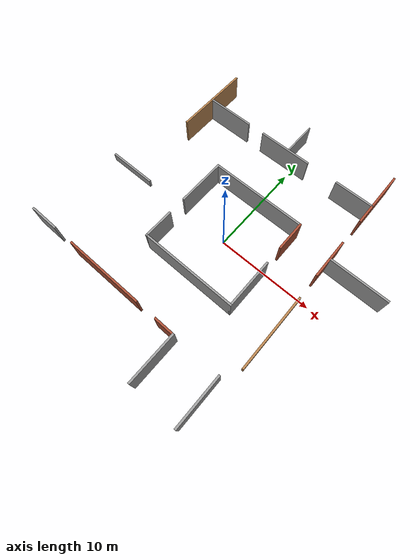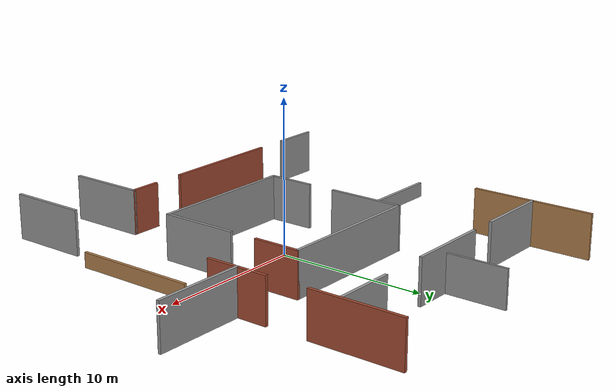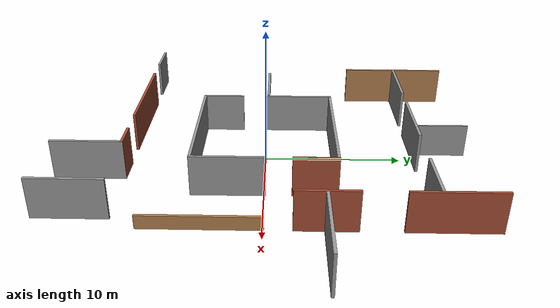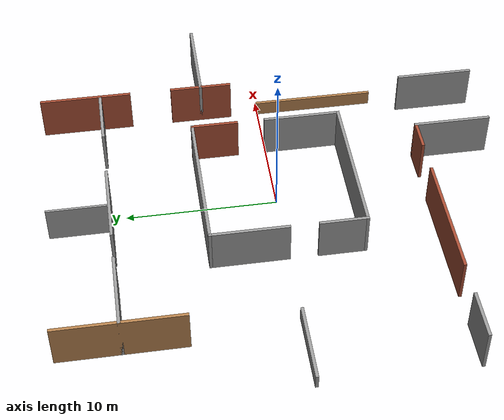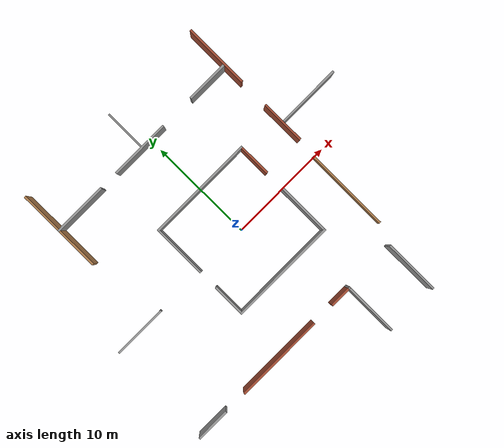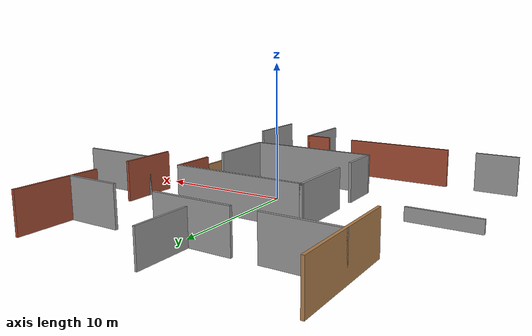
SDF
<?xml version='1.0'?>
<sdf version='1.7'>
  <model name='Office30'>
    <link name='Wall_46'>
      <pose>0 5 0 0 -0 0</pose>
      <self_collide>0</self_collide>
      <enable_wind>0</enable_wind>
      <kinematic>0</kinematic>
      <visual name='Wall_46_Visual'>
        <pose>0 0 1.5 0 -0 0</pose>
        <geometry>
          <box>
            <size>10.2 0.2 3</size>
          </box>
        </geometry>
        <material>
          <script>
            <uri>file://media/materials/scripts/gazebo.material</uri>
            <name>Gazebo/Grey</name>
          </script>
          <ambient>1 1 1 1</ambient>
          <shader type='pixel'/>
        </material>
        <meta>
          <layer>0</layer>
        </meta>
        <transparency>0</transparency>
        <cast_shadows>1</cast_shadows>
      </visual>
      <collision name='Wall_46_Collision'>
        <laser_retro>0</laser_retro>
        <max_contacts>10</max_contacts>
        <pose>0 0 1.5 0 -0 0</pose>
        <geometry>
          <box>
            <size>10.2 0.2 3</size>
          </box>
        </geometry>
        <surface>
          <friction>
            <ode>
              <mu>1</mu>
              <mu2>1</mu2>
              <fdir1>0 0 0</fdir1>
              <slip1>0</slip1>
              <slip2>0</slip2>
            </ode>
            <torsional>
              <coefficient>1</coefficient>
              <patch_radius>0</patch_radius>
              <surface_radius>0</surface_radius>
              <use_patch_radius>1</use_patch_radius>
              <ode>
                <slip>0</slip>
              </ode>
            </torsional>
          </friction>
          <bounce>
            <restitution_coefficient>0</restitution_coefficient>
            <threshold>1e+06</threshold>
          </bounce>
          <contact>
            <collide_without_contact>0</collide_without_contact>
            <collide_without_contact_bitmask>1</collide_without_contact_bitmask>
            <collide_bitmask>1</collide_bitmask>
            <ode>
              <soft_cfm>0</soft_cfm>
              <soft_erp>0.2</soft_erp>
              <kp>1e+13</kp>
              <kd>1</kd>
              <max_vel>0.01</max_vel>
              <min_depth>0</min_depth>
            </ode>
            <bullet>
              <split_impulse>1</split_impulse>
              <split_impulse_penetration_threshold>-0.01</split_impulse_penetration_threshold>
              <soft_cfm>0</soft_cfm>
              <soft_erp>0.2</soft_erp>
              <kp>1e+13</kp>
              <kd>1</kd>
            </bullet>
          </contact>
        </surface>
      </collision>
    </link>
    <link name='Wall_48'>
      <pose>0 -5 0 0 -0 0</pose>
      <self_collide>0</self_collide>
      <enable_wind>0</enable_wind>
      <kinematic>0</kinematic>
      <visual name='Wall_48_Visual'>
        <pose>0 0 1.5 0 -0 0</pose>
        <geometry>
          <box>
            <size>10.2 0.2 3</size>
          </box>
        </geometry>
        <material>
          <script>
            <uri>file://media/materials/scripts/gazebo.material</uri>
            <name>Gazebo/Grey</name>
          </script>
          <ambient>1 1 1 1</ambient>
          <shader type='pixel'/>
        </material>
        <meta>
          <layer>0</layer>
        </meta>
        <transparency>0</transparency>
        <cast_shadows>1</cast_shadows>
      </visual>
      <collision name='Wall_48_Collision'>
        <laser_retro>0</laser_retro>
        <max_contacts>10</max_contacts>
        <pose>0 0 1.5 0 -0 0</pose>
        <geometry>
          <box>
            <size>10.2 0.2 3</size>
          </box>
        </geometry>
        <surface>
          <friction>
            <ode>
              <mu>1</mu>
              <mu2>1</mu2>
              <fdir1>0 0 0</fdir1>
              <slip1>0</slip1>
              <slip2>0</slip2>
            </ode>
            <torsional>
              <coefficient>1</coefficient>
              <patch_radius>0</patch_radius>
              <surface_radius>0</surface_radius>
              <use_patch_radius>1</use_patch_radius>
              <ode>
                <slip>0</slip>
              </ode>
            </torsional>
          </friction>
          <bounce>
            <restitution_coefficient>0</restitution_coefficient>
            <threshold>1e+06</threshold>
          </bounce>
          <contact>
            <collide_without_contact>0</collide_without_contact>
            <collide_without_contact_bitmask>1</collide_without_contact_bitmask>
            <collide_bitmask>1</collide_bitmask>
            <ode>
              <soft_cfm>0</soft_cfm>
              <soft_erp>0.2</soft_erp>
              <kp>1e+13</kp>
              <kd>1</kd>
              <max_vel>0.01</max_vel>
              <min_depth>0</min_depth>
            </ode>
            <bullet>
              <split_impulse>1</split_impulse>
              <split_impulse_penetration_threshold>-0.01</split_impulse_penetration_threshold>
              <soft_cfm>0</soft_cfm>
              <soft_erp>0.2</soft_erp>
              <kp>1e+13</kp>
              <kd>1</kd>
            </bullet>
          </contact>
        </surface>
      </collision>
    </link>
    <link name='Wall_50'>
      <pose>5 -2.5 0 0 -0 1.5708</pose>
      <self_collide>0</self_collide>
      <enable_wind>0</enable_wind>
      <kinematic>0</kinematic>
      <visual name='Wall_50_Visual'>
        <pose>0 0 1.5 0 -0 0</pose>
        <geometry>
          <box>
            <size>5.2 0.2 3</size>
          </box>
        </geometry>
        <material>
          <script>
            <uri>file://media/materials/scripts/gazebo.material</uri>
            <name>Gazebo/Grey</name>
          </script>
          <ambient>1 1 1 1</ambient>
          <shader type='pixel'/>
        </material>
        <meta>
          <layer>0</layer>
        </meta>
        <transparency>0</transparency>
        <cast_shadows>1</cast_shadows>
      </visual>
      <collision name='Wall_50_Collision'>
        <laser_retro>0</laser_retro>
        <max_contacts>10</max_contacts>
        <pose>0 0 1.5 0 -0 0</pose>
        <geometry>
          <box>
            <size>5.2 0.2 3</size>
          </box>
        </geometry>
        <surface>
          <friction>
            <ode>
              <mu>1</mu>
              <mu2>1</mu2>
              <fdir1>0 0 0</fdir1>
              <slip1>0</slip1>
              <slip2>0</slip2>
            </ode>
            <torsional>
              <coefficient>1</coefficient>
              <patch_radius>0</patch_radius>
              <surface_radius>0</surface_radius>
              <use_patch_radius>1</use_patch_radius>
              <ode>
                <slip>0</slip>
              </ode>
            </torsional>
          </friction>
          <bounce>
            <restitution_coefficient>0</restitution_coefficient>
            <threshold>1e+06</threshold>
          </bounce>
          <contact>
            <collide_without_contact>0</collide_without_contact>
            <collide_without_contact_bitmask>1</collide_without_contact_bitmask>
            <collide_bitmask>1</collide_bitmask>
            <ode>
              <soft_cfm>0</soft_cfm>
              <soft_erp>0.2</soft_erp>
              <kp>1e+13</kp>
              <kd>1</kd>
              <max_vel>0.01</max_vel>
              <min_depth>0</min_depth>
            </ode>
            <bullet>
              <split_impulse>1</split_impulse>
              <split_impulse_penetration_threshold>-0.01</split_impulse_penetration_threshold>
              <soft_cfm>0</soft_cfm>
              <soft_erp>0.2</soft_erp>
              <kp>1e+13</kp>
              <kd>1</kd>
            </bullet>
          </contact>
        </surface>
      </collision>
    </link>
    <link name='Wall_52'>
      <pose>5 3.5 0 0 0 -1.5708</pose>
      <self_collide>0</self_collide>
      <enable_wind>0</enable_wind>
      <kinematic>0</kinematic>
      <visual name='Wall_52_Visual'>
        <pose>0 0 1.5 0 -0 0</pose>
        <geometry>
          <box>
            <size>3.2 0.2 3</size>
          </box>
        </geometry>
        <material>
          <script>
            <uri>file://media/materials/scripts/gazebo.material</uri>
            <name>Gazebo/Bricks</name>
          </script>
          <ambient>1 1 1 1</ambient>
          <shader type='pixel'/>
        </material>
        <meta>
          <layer>0</layer>
        </meta>
        <transparency>0</transparency>
        <cast_shadows>1</cast_shadows>
      </visual>
      <collision name='Wall_52_Collision'>
        <laser_retro>0</laser_retro>
        <max_contacts>10</max_contacts>
        <pose>0 0 1.5 0 -0 0</pose>
        <geometry>
          <box>
            <size>3.2 0.2 3</size>
          </box>
        </geometry>
        <surface>
          <friction>
            <ode>
              <mu>1</mu>
              <mu2>1</mu2>
              <fdir1>0 0 0</fdir1>
              <slip1>0</slip1>
              <slip2>0</slip2>
            </ode>
            <torsional>
              <coefficient>1</coefficient>
              <patch_radius>0</patch_radius>
              <surface_radius>0</surface_radius>
              <use_patch_radius>1</use_patch_radius>
              <ode>
                <slip>0</slip>
              </ode>
            </torsional>
          </friction>
          <bounce>
            <restitution_coefficient>0</restitution_coefficient>
            <threshold>1e+06</threshold>
          </bounce>
          <contact>
            <collide_without_contact>0</collide_without_contact>
            <collide_without_contact_bitmask>1</collide_without_contact_bitmask>
            <collide_bitmask>1</collide_bitmask>
            <ode>
              <soft_cfm>0</soft_cfm>
              <soft_erp>0.2</soft_erp>
              <kp>1e+13</kp>
              <kd>1</kd>
              <max_vel>0.01</max_vel>
              <min_depth>0</min_depth>
            </ode>
            <bullet>
              <split_impulse>1</split_impulse>
              <split_impulse_penetration_threshold>-0.01</split_impulse_penetration_threshold>
              <soft_cfm>0</soft_cfm>
              <soft_erp>0.2</soft_erp>
              <kp>1e+13</kp>
              <kd>1</kd>
            </bullet>
          </contact>
        </surface>
      </collision>
    </link>
    <link name='Wall_54'>
      <pose>9 -4 0 0 -0 1.5708</pose>
      <self_collide>0</self_collide>
      <enable_wind>0</enable_wind>
      <kinematic>0</kinematic>
      <visual name='Wall_54_Visual'>
        <pose>0 0 0.5 0 -0 0</pose>
        <geometry>
          <box>
            <size>8.2 0.2 1</size>
          </box>
        </geometry>
        <material>
          <script>
            <uri>file://media/materials/scripts/gazebo.material</uri>
            <name>Gazebo/Wood</name>
          </script>
          <ambient>1 1 1 1</ambient>
          <shader type='pixel'/>
        </material>
        <meta>
          <layer>0</layer>
        </meta>
        <transparency>0</transparency>
        <cast_shadows>1</cast_shadows>
      </visual>
      <collision name='Wall_54_Collision'>
        <laser_retro>0</laser_retro>
        <max_contacts>10</max_contacts>
        <pose>0 0 0.5 0 -0 0</pose>
        <geometry>
          <box>
            <size>8.2 0.2 1</size>
          </box>
        </geometry>
        <surface>
          <friction>
            <ode>
              <mu>1</mu>
              <mu2>1</mu2>
              <fdir1>0 0 0</fdir1>
              <slip1>0</slip1>
              <slip2>0</slip2>
            </ode>
            <torsional>
              <coefficient>1</coefficient>
              <patch_radius>0</patch_radius>
              <surface_radius>0</surface_radius>
              <use_patch_radius>1</use_patch_radius>
              <ode>
                <slip>0</slip>
              </ode>
            </torsional>
          </friction>
          <bounce>
            <restitution_coefficient>0</restitution_coefficient>
            <threshold>1e+06</threshold>
          </bounce>
          <contact>
            <collide_without_contact>0</collide_without_contact>
            <collide_without_contact_bitmask>1</collide_without_contact_bitmask>
            <collide_bitmask>1</collide_bitmask>
            <ode>
              <soft_cfm>0</soft_cfm>
              <soft_erp>0.2</soft_erp>
              <kp>1e+13</kp>
              <kd>1</kd>
              <max_vel>0.01</max_vel>
              <min_depth>0</min_depth>
            </ode>
            <bullet>
              <split_impulse>1</split_impulse>
              <split_impulse_penetration_threshold>-0.01</split_impulse_penetration_threshold>
              <soft_cfm>0</soft_cfm>
              <soft_erp>0.2</soft_erp>
              <kp>1e+13</kp>
              <kd>1</kd>
            </bullet>
          </contact>
        </surface>
      </collision>
    </link>
    <link name='Wall_59'>
      <pose>-5 2.5 0 0 0 -1.5708</pose>
      <self_collide>0</self_collide>
      <enable_wind>0</enable_wind>
      <kinematic>0</kinematic>
      <visual name='Wall_59_Visual'>
        <pose>0 0 1.5 0 -0 0</pose>
        <geometry>
          <box>
            <size>5.2 0.2 3</size>
          </box>
        </geometry>
        <material>
          <script>
            <uri>file://media/materials/scripts/gazebo.material</uri>
            <name>Gazebo/Grey</name>
          </script>
          <ambient>1 1 1 1</ambient>
          <shader type='pixel'/>
        </material>
        <meta>
          <layer>0</layer>
        </meta>
        <transparency>0</transparency>
        <cast_shadows>1</cast_shadows>
      </visual>
      <collision name='Wall_59_Collision'>
        <laser_retro>0</laser_retro>
        <max_contacts>10</max_contacts>
        <pose>0 0 1.5 0 -0 0</pose>
        <geometry>
          <box>
            <size>5.2 0.2 3</size>
          </box>
        </geometry>
        <surface>
          <friction>
            <ode>
              <mu>1</mu>
              <mu2>1</mu2>
              <fdir1>0 0 0</fdir1>
              <slip1>0</slip1>
              <slip2>0</slip2>
            </ode>
            <torsional>
              <coefficient>1</coefficient>
              <patch_radius>0</patch_radius>
              <surface_radius>0</surface_radius>
              <use_patch_radius>1</use_patch_radius>
              <ode>
                <slip>0</slip>
              </ode>
            </torsional>
          </friction>
          <bounce>
            <restitution_coefficient>0</restitution_coefficient>
            <threshold>1e+06</threshold>
          </bounce>
          <contact>
            <collide_without_contact>0</collide_without_contact>
            <collide_without_contact_bitmask>1</collide_without_contact_bitmask>
            <collide_bitmask>1</collide_bitmask>
            <ode>
              <soft_cfm>0</soft_cfm>
              <soft_erp>0.2</soft_erp>
              <kp>1e+13</kp>
              <kd>1</kd>
              <max_vel>0.01</max_vel>
              <min_depth>0</min_depth>
            </ode>
            <bullet>
              <split_impulse>1</split_impulse>
              <split_impulse_penetration_threshold>-0.01</split_impulse_penetration_threshold>
              <soft_cfm>0</soft_cfm>
              <soft_erp>0.2</soft_erp>
              <kp>1e+13</kp>
              <kd>1</kd>
            </bullet>
          </contact>
        </surface>
      </collision>
    </link>
    <link name='Wall_61'>
      <pose>-5 -3.5 0 0 -0 1.5708</pose>
      <self_collide>0</self_collide>
      <enable_wind>0</enable_wind>
      <kinematic>0</kinematic>
      <visual name='Wall_61_Visual'>
        <pose>0 0 1.5 0 -0 0</pose>
        <geometry>
          <box>
            <size>3.2 0.2 3</size>
          </box>
        </geometry>
        <material>
          <script>
            <uri>file://media/materials/scripts/gazebo.material</uri>
            <name>Gazebo/Grey</name>
          </script>
          <ambient>1 1 1 1</ambient>
          <shader type='pixel'/>
        </material>
        <meta>
          <layer>0</layer>
        </meta>
        <transparency>0</transparency>
        <cast_shadows>1</cast_shadows>
      </visual>
      <collision name='Wall_61_Collision'>
        <laser_retro>0</laser_retro>
        <max_contacts>10</max_contacts>
        <pose>0 0 1.5 0 -0 0</pose>
        <geometry>
          <box>
            <size>3.2 0.2 3</size>
          </box>
        </geometry>
        <surface>
          <friction>
            <ode>
              <mu>1</mu>
              <mu2>1</mu2>
              <fdir1>0 0 0</fdir1>
              <slip1>0</slip1>
              <slip2>0</slip2>
            </ode>
            <torsional>
              <coefficient>1</coefficient>
              <patch_radius>0</patch_radius>
              <surface_radius>0</surface_radius>
              <use_patch_radius>1</use_patch_radius>
              <ode>
                <slip>0</slip>
              </ode>
            </torsional>
          </friction>
          <bounce>
            <restitution_coefficient>0</restitution_coefficient>
            <threshold>1e+06</threshold>
          </bounce>
          <contact>
            <collide_without_contact>0</collide_without_contact>
            <collide_without_contact_bitmask>1</collide_without_contact_bitmask>
            <collide_bitmask>1</collide_bitmask>
            <ode>
              <soft_cfm>0</soft_cfm>
              <soft_erp>0.2</soft_erp>
              <kp>1e+13</kp>
              <kd>1</kd>
              <max_vel>0.01</max_vel>
              <min_depth>0</min_depth>
            </ode>
            <bullet>
              <split_impulse>1</split_impulse>
              <split_impulse_penetration_threshold>-0.01</split_impulse_penetration_threshold>
              <soft_cfm>0</soft_cfm>
              <soft_erp>0.2</soft_erp>
              <kp>1e+13</kp>
              <kd>1</kd>
            </bullet>
          </contact>
        </surface>
      </collision>
    </link>
    <link name='Wall_63'>
      <pose>9 4 0 0 -0 1.5708</pose>
      <self_collide>0</self_collide>
      <enable_wind>0</enable_wind>
      <kinematic>0</kinematic>
      <visual name='Wall_63_Visual'>
        <pose>0 0 1.5 0 -0 0</pose>
        <geometry>
          <box>
            <size>4.2 0.2 3</size>
          </box>
        </geometry>
        <material>
          <script>
            <uri>file://media/materials/scripts/gazebo.material</uri>
            <name>Gazebo/Bricks</name>
          </script>
          <ambient>1 1 1 1</ambient>
          <shader type='pixel'/>
        </material>
        <meta>
          <layer>0</layer>
        </meta>
        <transparency>0</transparency>
        <cast_shadows>1</cast_shadows>
      </visual>
      <collision name='Wall_63_Collision'>
        <laser_retro>0</laser_retro>
        <max_contacts>10</max_contacts>
        <pose>0 0 1.5 0 -0 0</pose>
        <geometry>
          <box>
            <size>4.2 0.2 3</size>
          </box>
        </geometry>
        <surface>
          <friction>
            <ode>
              <mu>1</mu>
              <mu2>1</mu2>
              <fdir1>0 0 0</fdir1>
              <slip1>0</slip1>
              <slip2>0</slip2>
            </ode>
            <torsional>
              <coefficient>1</coefficient>
              <patch_radius>0</patch_radius>
              <surface_radius>0</surface_radius>
              <use_patch_radius>1</use_patch_radius>
              <ode>
                <slip>0</slip>
              </ode>
            </torsional>
          </friction>
          <bounce>
            <restitution_coefficient>0</restitution_coefficient>
            <threshold>1e+06</threshold>
          </bounce>
          <contact>
            <collide_without_contact>0</collide_without_contact>
            <collide_without_contact_bitmask>1</collide_without_contact_bitmask>
            <collide_bitmask>1</collide_bitmask>
            <ode>
              <soft_cfm>0</soft_cfm>
              <soft_erp>0.2</soft_erp>
              <kp>1e+13</kp>
              <kd>1</kd>
              <max_vel>0.01</max_vel>
              <min_depth>0</min_depth>
            </ode>
            <bullet>
              <split_impulse>1</split_impulse>
              <split_impulse_penetration_threshold>-0.01</split_impulse_penetration_threshold>
              <soft_cfm>0</soft_cfm>
              <soft_erp>0.2</soft_erp>
              <kp>1e+13</kp>
              <kd>1</kd>
            </bullet>
          </contact>
        </surface>
      </collision>
    </link>
    <link name='Wall_65'>
      <pose>9 12 0 0 -0 1.5708</pose>
      <self_collide>0</self_collide>
      <enable_wind>0</enable_wind>
      <kinematic>0</kinematic>
      <visual name='Wall_65_Visual'>
        <pose>0 0 1.5 0 -0 0</pose>
        <geometry>
          <box>
            <size>6.2 0.2 3</size>
          </box>
        </geometry>
        <material>
          <script>
            <uri>file://media/materials/scripts/gazebo.material</uri>
            <name>Gazebo/Bricks</name>
          </script>
          <ambient>1 1 1 1</ambient>
          <shader type='pixel'/>
        </material>
        <meta>
          <layer>0</layer>
        </meta>
        <transparency>0</transparency>
        <cast_shadows>1</cast_shadows>
      </visual>
      <collision name='Wall_65_Collision'>
        <laser_retro>0</laser_retro>
        <max_contacts>10</max_contacts>
        <pose>0 0 1.5 0 -0 0</pose>
        <geometry>
          <box>
            <size>6.2 0.2 3</size>
          </box>
        </geometry>
        <surface>
          <friction>
            <ode>
              <mu>1</mu>
              <mu2>1</mu2>
              <fdir1>0 0 0</fdir1>
              <slip1>0</slip1>
              <slip2>0</slip2>
            </ode>
            <torsional>
              <coefficient>1</coefficient>
              <patch_radius>0</patch_radius>
              <surface_radius>0</surface_radius>
              <use_patch_radius>1</use_patch_radius>
              <ode>
                <slip>0</slip>
              </ode>
            </torsional>
          </friction>
          <bounce>
            <restitution_coefficient>0</restitution_coefficient>
            <threshold>1e+06</threshold>
          </bounce>
          <contact>
            <collide_without_contact>0</collide_without_contact>
            <collide_without_contact_bitmask>1</collide_without_contact_bitmask>
            <collide_bitmask>1</collide_bitmask>
            <ode>
              <soft_cfm>0</soft_cfm>
              <soft_erp>0.2</soft_erp>
              <kp>1e+13</kp>
              <kd>1</kd>
              <max_vel>0.01</max_vel>
              <min_depth>0</min_depth>
            </ode>
            <bullet>
              <split_impulse>1</split_impulse>
              <split_impulse_penetration_threshold>-0.01</split_impulse_penetration_threshold>
              <soft_cfm>0</soft_cfm>
              <soft_erp>0.2</soft_erp>
              <kp>1e+13</kp>
              <kd>1</kd>
            </bullet>
          </contact>
        </surface>
      </collision>
    </link>
    <link name='Wall_67'>
      <pose>-13.5 -10 0 0 -0 0</pose>
      <self_collide>0</self_collide>
      <enable_wind>0</enable_wind>
      <kinematic>0</kinematic>
      <visual name='Wall_67_Visual'>
        <pose>0 0 1.5 0 -0 0</pose>
        <geometry>
          <box>
            <size>3.2 0.2 3</size>
          </box>
        </geometry>
        <material>
          <script>
            <uri>file://media/materials/scripts/gazebo.material</uri>
            <name>Gazebo/Grey</name>
          </script>
          <ambient>1 1 1 1</ambient>
          <shader type='pixel'/>
        </material>
        <meta>
          <layer>0</layer>
        </meta>
        <transparency>0</transparency>
        <cast_shadows>1</cast_shadows>
      </visual>
      <collision name='Wall_67_Collision'>
        <laser_retro>0</laser_retro>
        <max_contacts>10</max_contacts>
        <pose>0 0 1.5 0 -0 0</pose>
        <geometry>
          <box>
            <size>3.2 0.2 3</size>
          </box>
        </geometry>
        <surface>
          <friction>
            <ode>
              <mu>1</mu>
              <mu2>1</mu2>
              <fdir1>0 0 0</fdir1>
              <slip1>0</slip1>
              <slip2>0</slip2>
            </ode>
            <torsional>
              <coefficient>1</coefficient>
              <patch_radius>0</patch_radius>
              <surface_radius>0</surface_radius>
              <use_patch_radius>1</use_patch_radius>
              <ode>
                <slip>0</slip>
              </ode>
            </torsional>
          </friction>
          <bounce>
            <restitution_coefficient>0</restitution_coefficient>
            <threshold>1e+06</threshold>
          </bounce>
          <contact>
            <collide_without_contact>0</collide_without_contact>
            <collide_without_contact_bitmask>1</collide_without_contact_bitmask>
            <collide_bitmask>1</collide_bitmask>
            <ode>
              <soft_cfm>0</soft_cfm>
              <soft_erp>0.2</soft_erp>
              <kp>1e+13</kp>
              <kd>1</kd>
              <max_vel>0.01</max_vel>
              <min_depth>0</min_depth>
            </ode>
            <bullet>
              <split_impulse>1</split_impulse>
              <split_impulse_penetration_threshold>-0.01</split_impulse_penetration_threshold>
              <soft_cfm>0</soft_cfm>
              <soft_erp>0.2</soft_erp>
              <kp>1e+13</kp>
              <kd>1</kd>
            </bullet>
          </contact>
        </surface>
      </collision>
    </link>
    <link name='Wall_69'>
      <pose>-5.47371 -10 0 0 -0 0</pose>
      <self_collide>0</self_collide>
      <enable_wind>0</enable_wind>
      <kinematic>0</kinematic>
      <inertial>
        <inertia>
          <ixx>0</ixx>
          <ixy>0</ixy>
          <ixz>0</ixz>
          <iyy>0</iyy>
          <iyz>0</iyz>
          <izz>0</izz>
        </inertia>
        <mass>0</mass>
        <pose>0 0 0 0 -0 0</pose>
      </inertial>
      <visual name='Wall_69_Visual'>
        <pose>0 0 1.5 0 -0 0</pose>
        <geometry>
          <box>
            <size>8.48445 0.2 3</size>
          </box>
        </geometry>
        <material>
          <script>
            <uri>file://media/materials/scripts/gazebo.material</uri>
            <name>Gazebo/Bricks</name>
          </script>
          <ambient>1 1 1 1</ambient>
          <shader type='pixel'/>
        </material>
        <meta>
          <layer>0</layer>
        </meta>
        <transparency>0</transparency>
        <cast_shadows>1</cast_shadows>
      </visual>
      <collision name='Wall_69_Collision'>
        <laser_retro>0</laser_retro>
        <max_contacts>10</max_contacts>
        <pose>0 0 1.5 0 -0 0</pose>
        <geometry>
          <box>
            <size>8.48445 0.2 3</size>
          </box>
        </geometry>
        <surface>
          <friction>
            <ode>
              <mu>1</mu>
              <mu2>1</mu2>
              <fdir1>0 0 0</fdir1>
              <slip1>0</slip1>
              <slip2>0</slip2>
            </ode>
            <torsional>
              <coefficient>1</coefficient>
              <patch_radius>0</patch_radius>
              <surface_radius>0</surface_radius>
              <use_patch_radius>1</use_patch_radius>
              <ode>
                <slip>0</slip>
              </ode>
            </torsional>
          </friction>
          <bounce>
            <restitution_coefficient>0</restitution_coefficient>
            <threshold>1e+06</threshold>
          </bounce>
          <contact>
            <collide_without_contact>0</collide_without_contact>
            <collide_without_contact_bitmask>1</collide_without_contact_bitmask>
            <collide_bitmask>1</collide_bitmask>
            <ode>
              <soft_cfm>0</soft_cfm>
              <soft_erp>0.2</soft_erp>
              <kp>1e+13</kp>
              <kd>1</kd>
              <max_vel>0.01</max_vel>
              <min_depth>0</min_depth>
            </ode>
            <bullet>
              <split_impulse>1</split_impulse>
              <split_impulse_penetration_threshold>-0.01</split_impulse_penetration_threshold>
              <soft_cfm>0</soft_cfm>
              <soft_erp>0.2</soft_erp>
              <kp>1e+13</kp>
              <kd>1</kd>
            </bullet>
          </contact>
        </surface>
      </collision>
    </link>
    <link name='Wall_71'>
      <pose>2 -10 0 0 -0 0</pose>
      <self_collide>0</self_collide>
      <enable_wind>0</enable_wind>
      <kinematic>0</kinematic>
      <visual name='Wall_71_Visual'>
        <pose>0 0 1.5 0 -0 0</pose>
        <geometry>
          <box>
            <size>2.2 0.2 3</size>
          </box>
        </geometry>
        <material>
          <script>
            <uri>file://media/materials/scripts/gazebo.material</uri>
            <name>Gazebo/Bricks</name>
          </script>
          <ambient>1 1 1 1</ambient>
          <shader type='pixel'/>
        </material>
        <meta>
          <layer>0</layer>
        </meta>
        <transparency>0</transparency>
        <cast_shadows>1</cast_shadows>
      </visual>
      <collision name='Wall_71_Collision'>
        <laser_retro>0</laser_retro>
        <max_contacts>10</max_contacts>
        <pose>0 0 1.5 0 -0 0</pose>
        <geometry>
          <box>
            <size>2.2 0.2 3</size>
          </box>
        </geometry>
        <surface>
          <friction>
            <ode>
              <mu>1</mu>
              <mu2>1</mu2>
              <fdir1>0 0 0</fdir1>
              <slip1>0</slip1>
              <slip2>0</slip2>
            </ode>
            <torsional>
              <coefficient>1</coefficient>
              <patch_radius>0</patch_radius>
              <surface_radius>0</surface_radius>
              <use_patch_radius>1</use_patch_radius>
              <ode>
                <slip>0</slip>
              </ode>
            </torsional>
          </friction>
          <bounce>
            <restitution_coefficient>0</restitution_coefficient>
            <threshold>1e+06</threshold>
          </bounce>
          <contact>
            <collide_without_contact>0</collide_without_contact>
            <collide_without_contact_bitmask>1</collide_without_contact_bitmask>
            <collide_bitmask>1</collide_bitmask>
            <ode>
              <soft_cfm>0</soft_cfm>
              <soft_erp>0.2</soft_erp>
              <kp>1e+13</kp>
              <kd>1</kd>
              <max_vel>0.01</max_vel>
              <min_depth>0</min_depth>
            </ode>
            <bullet>
              <split_impulse>1</split_impulse>
              <split_impulse_penetration_threshold>-0.01</split_impulse_penetration_threshold>
              <soft_cfm>0</soft_cfm>
              <soft_erp>0.2</soft_erp>
              <kp>1e+13</kp>
              <kd>1</kd>
            </bullet>
          </contact>
        </surface>
      </collision>
    </link>
    <link name='Wall_72'>
      <pose>3 -12.5 0 0 0 -1.5708</pose>
      <self_collide>0</self_collide>
      <enable_wind>0</enable_wind>
      <kinematic>0</kinematic>
      <visual name='Wall_72_Visual'>
        <pose>0 0 1.5 0 -0 0</pose>
        <geometry>
          <box>
            <size>5.2 0.2 3</size>
          </box>
        </geometry>
        <material>
          <script>
            <uri>file://media/materials/scripts/gazebo.material</uri>
            <name>Gazebo/Grey</name>
          </script>
          <ambient>1 1 1 1</ambient>
          <shader type='pixel'/>
        </material>
        <meta>
          <layer>0</layer>
        </meta>
        <transparency>0</transparency>
        <cast_shadows>1</cast_shadows>
      </visual>
      <collision name='Wall_72_Collision'>
        <laser_retro>0</laser_retro>
        <max_contacts>10</max_contacts>
        <pose>0 0 1.5 0 -0 0</pose>
        <geometry>
          <box>
            <size>5.2 0.2 3</size>
          </box>
        </geometry>
        <surface>
          <friction>
            <ode>
              <mu>1</mu>
              <mu2>1</mu2>
              <fdir1>0 0 0</fdir1>
              <slip1>0</slip1>
              <slip2>0</slip2>
            </ode>
            <torsional>
              <coefficient>1</coefficient>
              <patch_radius>0</patch_radius>
              <surface_radius>0</surface_radius>
              <use_patch_radius>1</use_patch_radius>
              <ode>
                <slip>0</slip>
              </ode>
            </torsional>
          </friction>
          <bounce>
            <restitution_coefficient>0</restitution_coefficient>
            <threshold>1e+06</threshold>
          </bounce>
          <contact>
            <collide_without_contact>0</collide_without_contact>
            <collide_without_contact_bitmask>1</collide_without_contact_bitmask>
            <collide_bitmask>1</collide_bitmask>
            <ode>
              <soft_cfm>0</soft_cfm>
              <soft_erp>0.2</soft_erp>
              <kp>1e+13</kp>
              <kd>1</kd>
              <max_vel>0.01</max_vel>
              <min_depth>0</min_depth>
            </ode>
            <bullet>
              <split_impulse>1</split_impulse>
              <split_impulse_penetration_threshold>-0.01</split_impulse_penetration_threshold>
              <soft_cfm>0</soft_cfm>
              <soft_erp>0.2</soft_erp>
              <kp>1e+13</kp>
              <kd>1</kd>
            </bullet>
          </contact>
        </surface>
      </collision>
    </link>
    <link name='Wall_75'>
      <pose>8 -12.5 0 0 0 -1.5708</pose>
      <self_collide>0</self_collide>
      <enable_wind>0</enable_wind>
      <kinematic>0</kinematic>
      <visual name='Wall_75_Visual'>
        <pose>0 0 1.5 0 -0 0</pose>
        <geometry>
          <box>
            <size>5.2 0.2 3</size>
          </box>
        </geometry>
        <material>
          <script>
            <uri>file://media/materials/scripts/gazebo.material</uri>
            <name>Gazebo/Grey</name>
          </script>
          <ambient>1 1 1 1</ambient>
          <shader type='pixel'/>
        </material>
        <meta>
          <layer>0</layer>
        </meta>
        <transparency>0</transparency>
        <cast_shadows>1</cast_shadows>
      </visual>
      <collision name='Wall_75_Collision'>
        <laser_retro>0</laser_retro>
        <max_contacts>10</max_contacts>
        <pose>0 0 1.5 0 -0 0</pose>
        <geometry>
          <box>
            <size>5.2 0.2 3</size>
          </box>
        </geometry>
        <surface>
          <friction>
            <ode>
              <mu>1</mu>
              <mu2>1</mu2>
              <fdir1>0 0 0</fdir1>
              <slip1>0</slip1>
              <slip2>0</slip2>
            </ode>
            <torsional>
              <coefficient>1</coefficient>
              <patch_radius>0</patch_radius>
              <surface_radius>0</surface_radius>
              <use_patch_radius>1</use_patch_radius>
              <ode>
                <slip>0</slip>
              </ode>
            </torsional>
          </friction>
          <bounce>
            <restitution_coefficient>0</restitution_coefficient>
            <threshold>1e+06</threshold>
          </bounce>
          <contact>
            <collide_without_contact>0</collide_without_contact>
            <collide_without_contact_bitmask>1</collide_without_contact_bitmask>
            <collide_bitmask>1</collide_bitmask>
            <ode>
              <soft_cfm>0</soft_cfm>
              <soft_erp>0.2</soft_erp>
              <kp>1e+13</kp>
              <kd>1</kd>
              <max_vel>0.01</max_vel>
              <min_depth>0</min_depth>
            </ode>
            <bullet>
              <split_impulse>1</split_impulse>
              <split_impulse_penetration_threshold>-0.01</split_impulse_penetration_threshold>
              <soft_cfm>0</soft_cfm>
              <soft_erp>0.2</soft_erp>
              <kp>1e+13</kp>
              <kd>1</kd>
            </bullet>
          </contact>
        </surface>
      </collision>
    </link>
    <link name='Wall_77'>
      <pose>12 4 0 0 -0 0</pose>
      <self_collide>0</self_collide>
      <enable_wind>0</enable_wind>
      <kinematic>0</kinematic>
      <visual name='Wall_77_Visual'>
        <pose>0 0 1.5 0 -0 0</pose>
        <geometry>
          <box>
            <size>6.2 0.2 3</size>
          </box>
        </geometry>
        <material>
          <script>
            <uri>file://media/materials/scripts/gazebo.material</uri>
            <name>Gazebo/Grey</name>
          </script>
          <ambient>1 1 1 1</ambient>
          <shader type='pixel'/>
        </material>
        <meta>
          <layer>0</layer>
        </meta>
        <transparency>0</transparency>
        <cast_shadows>1</cast_shadows>
      </visual>
      <collision name='Wall_77_Collision'>
        <laser_retro>0</laser_retro>
        <max_contacts>10</max_contacts>
        <pose>0 0 1.5 0 -0 0</pose>
        <geometry>
          <box>
            <size>6.2 0.2 3</size>
          </box>
        </geometry>
        <surface>
          <friction>
            <ode>
              <mu>1</mu>
              <mu2>1</mu2>
              <fdir1>0 0 0</fdir1>
              <slip1>0</slip1>
              <slip2>0</slip2>
            </ode>
            <torsional>
              <coefficient>1</coefficient>
              <patch_radius>0</patch_radius>
              <surface_radius>0</surface_radius>
              <use_patch_radius>1</use_patch_radius>
              <ode>
                <slip>0</slip>
              </ode>
            </torsional>
          </friction>
          <bounce>
            <restitution_coefficient>0</restitution_coefficient>
            <threshold>1e+06</threshold>
          </bounce>
          <contact>
            <collide_without_contact>0</collide_without_contact>
            <collide_without_contact_bitmask>1</collide_without_contact_bitmask>
            <collide_bitmask>1</collide_bitmask>
            <ode>
              <soft_cfm>0</soft_cfm>
              <soft_erp>0.2</soft_erp>
              <kp>1e+13</kp>
              <kd>1</kd>
              <max_vel>0.01</max_vel>
              <min_depth>0</min_depth>
            </ode>
            <bullet>
              <split_impulse>1</split_impulse>
              <split_impulse_penetration_threshold>-0.01</split_impulse_penetration_threshold>
              <soft_cfm>0</soft_cfm>
              <soft_erp>0.2</soft_erp>
              <kp>1e+13</kp>
              <kd>1</kd>
            </bullet>
          </contact>
        </surface>
      </collision>
    </link>
    <link name='Wall_79'>
      <pose>7 11 0 0 -0 3.14159</pose>
      <self_collide>0</self_collide>
      <enable_wind>0</enable_wind>
      <kinematic>0</kinematic>
      <visual name='Wall_79_Visual'>
        <pose>0 0 1.5 0 -0 0</pose>
        <geometry>
          <box>
            <size>4.2 0.2 3</size>
          </box>
        </geometry>
        <material>
          <script>
            <uri>file://media/materials/scripts/gazebo.material</uri>
            <name>Gazebo/Grey</name>
          </script>
          <ambient>1 1 1 1</ambient>
          <shader type='pixel'/>
        </material>
        <meta>
          <layer>0</layer>
        </meta>
        <transparency>0</transparency>
        <cast_shadows>1</cast_shadows>
      </visual>
      <collision name='Wall_79_Collision'>
        <laser_retro>0</laser_retro>
        <max_contacts>10</max_contacts>
        <pose>0 0 1.5 0 -0 0</pose>
        <geometry>
          <box>
            <size>4.2 0.2 3</size>
          </box>
        </geometry>
        <surface>
          <friction>
            <ode>
              <mu>1</mu>
              <mu2>1</mu2>
              <fdir1>0 0 0</fdir1>
              <slip1>0</slip1>
              <slip2>0</slip2>
            </ode>
            <torsional>
              <coefficient>1</coefficient>
              <patch_radius>0</patch_radius>
              <surface_radius>0</surface_radius>
              <use_patch_radius>1</use_patch_radius>
              <ode>
                <slip>0</slip>
              </ode>
            </torsional>
          </friction>
          <bounce>
            <restitution_coefficient>0</restitution_coefficient>
            <threshold>1e+06</threshold>
          </bounce>
          <contact>
            <collide_without_contact>0</collide_without_contact>
            <collide_without_contact_bitmask>1</collide_without_contact_bitmask>
            <collide_bitmask>1</collide_bitmask>
            <ode>
              <soft_cfm>0</soft_cfm>
              <soft_erp>0.2</soft_erp>
              <kp>1e+13</kp>
              <kd>1</kd>
              <max_vel>0.01</max_vel>
              <min_depth>0</min_depth>
            </ode>
            <bullet>
              <split_impulse>1</split_impulse>
              <split_impulse_penetration_threshold>-0.01</split_impulse_penetration_threshold>
              <soft_cfm>0</soft_cfm>
              <soft_erp>0.2</soft_erp>
              <kp>1e+13</kp>
              <kd>1</kd>
            </bullet>
          </contact>
        </surface>
      </collision>
    </link>
    <link name='Wall_81'>
      <pose>-1.25 11 0 0 -0 3.14159</pose>
      <self_collide>0</self_collide>
      <enable_wind>0</enable_wind>
      <kinematic>0</kinematic>
      <visual name='Wall_81_Visual'>
        <pose>0 0 1.5 0 -0 0</pose>
        <geometry>
          <box>
            <size>5.7 0.2 3</size>
          </box>
        </geometry>
        <material>
          <script>
            <uri>file://media/materials/scripts/gazebo.material</uri>
            <name>Gazebo/Grey</name>
          </script>
          <ambient>1 1 1 1</ambient>
          <shader type='pixel'/>
        </material>
        <meta>
          <layer>0</layer>
        </meta>
        <transparency>0</transparency>
        <cast_shadows>1</cast_shadows>
      </visual>
      <collision name='Wall_81_Collision'>
        <laser_retro>0</laser_retro>
        <max_contacts>10</max_contacts>
        <pose>0 0 1.5 0 -0 0</pose>
        <geometry>
          <box>
            <size>5.7 0.2 3</size>
          </box>
        </geometry>
        <surface>
          <friction>
            <ode>
              <mu>1</mu>
              <mu2>1</mu2>
              <fdir1>0 0 0</fdir1>
              <slip1>0</slip1>
              <slip2>0</slip2>
            </ode>
            <torsional>
              <coefficient>1</coefficient>
              <patch_radius>0</patch_radius>
              <surface_radius>0</surface_radius>
              <use_patch_radius>1</use_patch_radius>
              <ode>
                <slip>0</slip>
              </ode>
            </torsional>
          </friction>
          <bounce>
            <restitution_coefficient>0</restitution_coefficient>
            <threshold>1e+06</threshold>
          </bounce>
          <contact>
            <collide_without_contact>0</collide_without_contact>
            <collide_without_contact_bitmask>1</collide_without_contact_bitmask>
            <collide_bitmask>1</collide_bitmask>
            <ode>
              <soft_cfm>0</soft_cfm>
              <soft_erp>0.2</soft_erp>
              <kp>1e+13</kp>
              <kd>1</kd>
              <max_vel>0.01</max_vel>
              <min_depth>0</min_depth>
            </ode>
            <bullet>
              <split_impulse>1</split_impulse>
              <split_impulse_penetration_threshold>-0.01</split_impulse_penetration_threshold>
              <soft_cfm>0</soft_cfm>
              <soft_erp>0.2</soft_erp>
              <kp>1e+13</kp>
              <kd>1</kd>
            </bullet>
          </contact>
        </surface>
      </collision>
    </link>
    <link name='Wall_83'>
      <pose>-8.5 11 0 0 -0 3.14159</pose>
      <self_collide>0</self_collide>
      <enable_wind>0</enable_wind>
      <kinematic>0</kinematic>
      <visual name='Wall_83_Visual'>
        <pose>0 0 1.5 0 -0 0</pose>
        <geometry>
          <box>
            <size>5.2 0.2 3</size>
          </box>
        </geometry>
        <material>
          <script>
            <uri>file://media/materials/scripts/gazebo.material</uri>
            <name>Gazebo/Grey</name>
          </script>
          <ambient>1 1 1 1</ambient>
          <shader type='pixel'/>
        </material>
        <meta>
          <layer>0</layer>
        </meta>
        <transparency>0</transparency>
        <cast_shadows>1</cast_shadows>
      </visual>
      <collision name='Wall_83_Collision'>
        <laser_retro>0</laser_retro>
        <max_contacts>10</max_contacts>
        <pose>0 0 1.5 0 -0 0</pose>
        <geometry>
          <box>
            <size>5.2 0.2 3</size>
          </box>
        </geometry>
        <surface>
          <friction>
            <ode>
              <mu>1</mu>
              <mu2>1</mu2>
              <fdir1>0 0 0</fdir1>
              <slip1>0</slip1>
              <slip2>0</slip2>
            </ode>
            <torsional>
              <coefficient>1</coefficient>
              <patch_radius>0</patch_radius>
              <surface_radius>0</surface_radius>
              <use_patch_radius>1</use_patch_radius>
              <ode>
                <slip>0</slip>
              </ode>
            </torsional>
          </friction>
          <bounce>
            <restitution_coefficient>0</restitution_coefficient>
            <threshold>1e+06</threshold>
          </bounce>
          <contact>
            <collide_without_contact>0</collide_without_contact>
            <collide_without_contact_bitmask>1</collide_without_contact_bitmask>
            <collide_bitmask>1</collide_bitmask>
            <ode>
              <soft_cfm>0</soft_cfm>
              <soft_erp>0.2</soft_erp>
              <kp>1e+13</kp>
              <kd>1</kd>
              <max_vel>0.01</max_vel>
              <min_depth>0</min_depth>
            </ode>
            <bullet>
              <split_impulse>1</split_impulse>
              <split_impulse_penetration_threshold>-0.01</split_impulse_penetration_threshold>
              <soft_cfm>0</soft_cfm>
              <soft_erp>0.2</soft_erp>
              <kp>1e+13</kp>
              <kd>1</kd>
            </bullet>
          </contact>
        </surface>
      </collision>
    </link>
    <link name='Wall_85'>
      <pose>-11 11 0 0 0 -1.5708</pose>
      <self_collide>0</self_collide>
      <enable_wind>0</enable_wind>
      <kinematic>0</kinematic>
      <visual name='Wall_85_Visual'>
        <pose>0 0 1.5 0 -0 0</pose>
        <geometry>
          <box>
            <size>8.2 0.2 3</size>
          </box>
        </geometry>
        <material>
          <script>
            <uri>file://media/materials/scripts/gazebo.material</uri>
            <name>Gazebo/Wood</name>
          </script>
          <ambient>1 1 1 1</ambient>
          <shader type='pixel'/>
        </material>
        <meta>
          <layer>0</layer>
        </meta>
        <transparency>0</transparency>
        <cast_shadows>1</cast_shadows>
      </visual>
      <collision name='Wall_85_Collision'>
        <laser_retro>0</laser_retro>
        <max_contacts>10</max_contacts>
        <pose>0 0 1.5 0 -0 0</pose>
        <geometry>
          <box>
            <size>8.2 0.2 3</size>
          </box>
        </geometry>
        <surface>
          <friction>
            <ode>
              <mu>1</mu>
              <mu2>1</mu2>
              <fdir1>0 0 0</fdir1>
              <slip1>0</slip1>
              <slip2>0</slip2>
            </ode>
            <torsional>
              <coefficient>1</coefficient>
              <patch_radius>0</patch_radius>
              <surface_radius>0</surface_radius>
              <use_patch_radius>1</use_patch_radius>
              <ode>
                <slip>0</slip>
              </ode>
            </torsional>
          </friction>
          <bounce>
            <restitution_coefficient>0</restitution_coefficient>
            <threshold>1e+06</threshold>
          </bounce>
          <contact>
            <collide_without_contact>0</collide_without_contact>
            <collide_without_contact_bitmask>1</collide_without_contact_bitmask>
            <collide_bitmask>1</collide_bitmask>
            <ode>
              <soft_cfm>0</soft_cfm>
              <soft_erp>0.2</soft_erp>
              <kp>1e+13</kp>
              <kd>1</kd>
              <max_vel>0.01</max_vel>
              <min_depth>0</min_depth>
            </ode>
            <bullet>
              <split_impulse>1</split_impulse>
              <split_impulse_penetration_threshold>-0.01</split_impulse_penetration_threshold>
              <soft_cfm>0</soft_cfm>
              <soft_erp>0.2</soft_erp>
              <kp>1e+13</kp>
              <kd>1</kd>
            </bullet>
          </contact>
        </surface>
      </collision>
    </link>
    <link name='Wall_87'>
      <pose>-12.5 0 0 0 -0 3.14159</pose>
      <self_collide>0</self_collide>
      <enable_wind>0</enable_wind>
      <kinematic>0</kinematic>
      <visual name='Wall_87_Visual'>
        <pose>0 0 0.5 0 -0 0</pose>
        <geometry>
          <box>
            <size>5.2 0.2 1</size>
          </box>
        </geometry>
        <material>
          <script>
            <uri>file://media/materials/scripts/gazebo.material</uri>
            <name>Gazebo/Grey</name>
          </script>
          <ambient>1 1 1 1</ambient>
          <shader type='pixel'/>
        </material>
        <meta>
          <layer>0</layer>
        </meta>
        <transparency>0</transparency>
        <cast_shadows>1</cast_shadows>
      </visual>
      <collision name='Wall_87_Collision'>
        <laser_retro>0</laser_retro>
        <max_contacts>10</max_contacts>
        <pose>0 0 0.5 0 -0 0</pose>
        <geometry>
          <box>
            <size>5.2 0.2 1</size>
          </box>
        </geometry>
        <surface>
          <friction>
            <ode>
              <mu>1</mu>
              <mu2>1</mu2>
              <fdir1>0 0 0</fdir1>
              <slip1>0</slip1>
              <slip2>0</slip2>
            </ode>
            <torsional>
              <coefficient>1</coefficient>
              <patch_radius>0</patch_radius>
              <surface_radius>0</surface_radius>
              <use_patch_radius>1</use_patch_radius>
              <ode>
                <slip>0</slip>
              </ode>
            </torsional>
          </friction>
          <bounce>
            <restitution_coefficient>0</restitution_coefficient>
            <threshold>1e+06</threshold>
          </bounce>
          <contact>
            <collide_without_contact>0</collide_without_contact>
            <collide_without_contact_bitmask>1</collide_without_contact_bitmask>
            <collide_bitmask>1</collide_bitmask>
            <ode>
              <soft_cfm>0</soft_cfm>
              <soft_erp>0.2</soft_erp>
              <kp>1e+13</kp>
              <kd>1</kd>
              <max_vel>0.01</max_vel>
              <min_depth>0</min_depth>
            </ode>
            <bullet>
              <split_impulse>1</split_impulse>
              <split_impulse_penetration_threshold>-0.01</split_impulse_penetration_threshold>
              <soft_cfm>0</soft_cfm>
              <soft_erp>0.2</soft_erp>
              <kp>1e+13</kp>
              <kd>1</kd>
            </bullet>
          </contact>
        </surface>
      </collision>
    </link>
    <link name='Wall_89'>
      <pose>-1 13 0 0 -0 1.5708</pose>
      <self_collide>0</self_collide>
      <enable_wind>0</enable_wind>
      <kinematic>0</kinematic>
      <visual name='Wall_89_Visual'>
        <pose>0 0 1.25 0 -0 0</pose>
        <geometry>
          <box>
            <size>4.15 0.15 2.5</size>
          </box>
        </geometry>
        <material>
          <script>
            <uri>file://media/materials/scripts/gazebo.material</uri>
            <name>Gazebo/Grey</name>
          </script>
          <ambient>1 1 1 1</ambient>
          <shader type='pixel'/>
        </material>
        <meta>
          <layer>0</layer>
        </meta>
        <transparency>0</transparency>
        <cast_shadows>1</cast_shadows>
      </visual>
      <collision name='Wall_89_Collision'>
        <laser_retro>0</laser_retro>
        <max_contacts>10</max_contacts>
        <pose>0 0 1.25 0 -0 0</pose>
        <geometry>
          <box>
            <size>4.15 0.15 2.5</size>
          </box>
        </geometry>
        <surface>
          <friction>
            <ode>
              <mu>1</mu>
              <mu2>1</mu2>
              <fdir1>0 0 0</fdir1>
              <slip1>0</slip1>
              <slip2>0</slip2>
            </ode>
            <torsional>
              <coefficient>1</coefficient>
              <patch_radius>0</patch_radius>
              <surface_radius>0</surface_radius>
              <use_patch_radius>1</use_patch_radius>
              <ode>
                <slip>0</slip>
              </ode>
            </torsional>
          </friction>
          <bounce>
            <restitution_coefficient>0</restitution_coefficient>
            <threshold>1e+06</threshold>
          </bounce>
          <contact>
            <collide_without_contact>0</collide_without_contact>
            <collide_without_contact_bitmask>1</collide_without_contact_bitmask>
            <collide_bitmask>1</collide_bitmask>
            <ode>
              <soft_cfm>0</soft_cfm>
              <soft_erp>0.2</soft_erp>
              <kp>1e+13</kp>
              <kd>1</kd>
              <max_vel>0.01</max_vel>
              <min_depth>0</min_depth>
            </ode>
            <bullet>
              <split_impulse>1</split_impulse>
              <split_impulse_penetration_threshold>-0.01</split_impulse_penetration_threshold>
              <soft_cfm>0</soft_cfm>
              <soft_erp>0.2</soft_erp>
              <kp>1e+13</kp>
              <kd>1</kd>
            </bullet>
          </contact>
        </surface>
      </collision>
    </link>
    <static>1</static>
    <allow_auto_disable>1</allow_auto_disable>
  </model>
</sdf>
